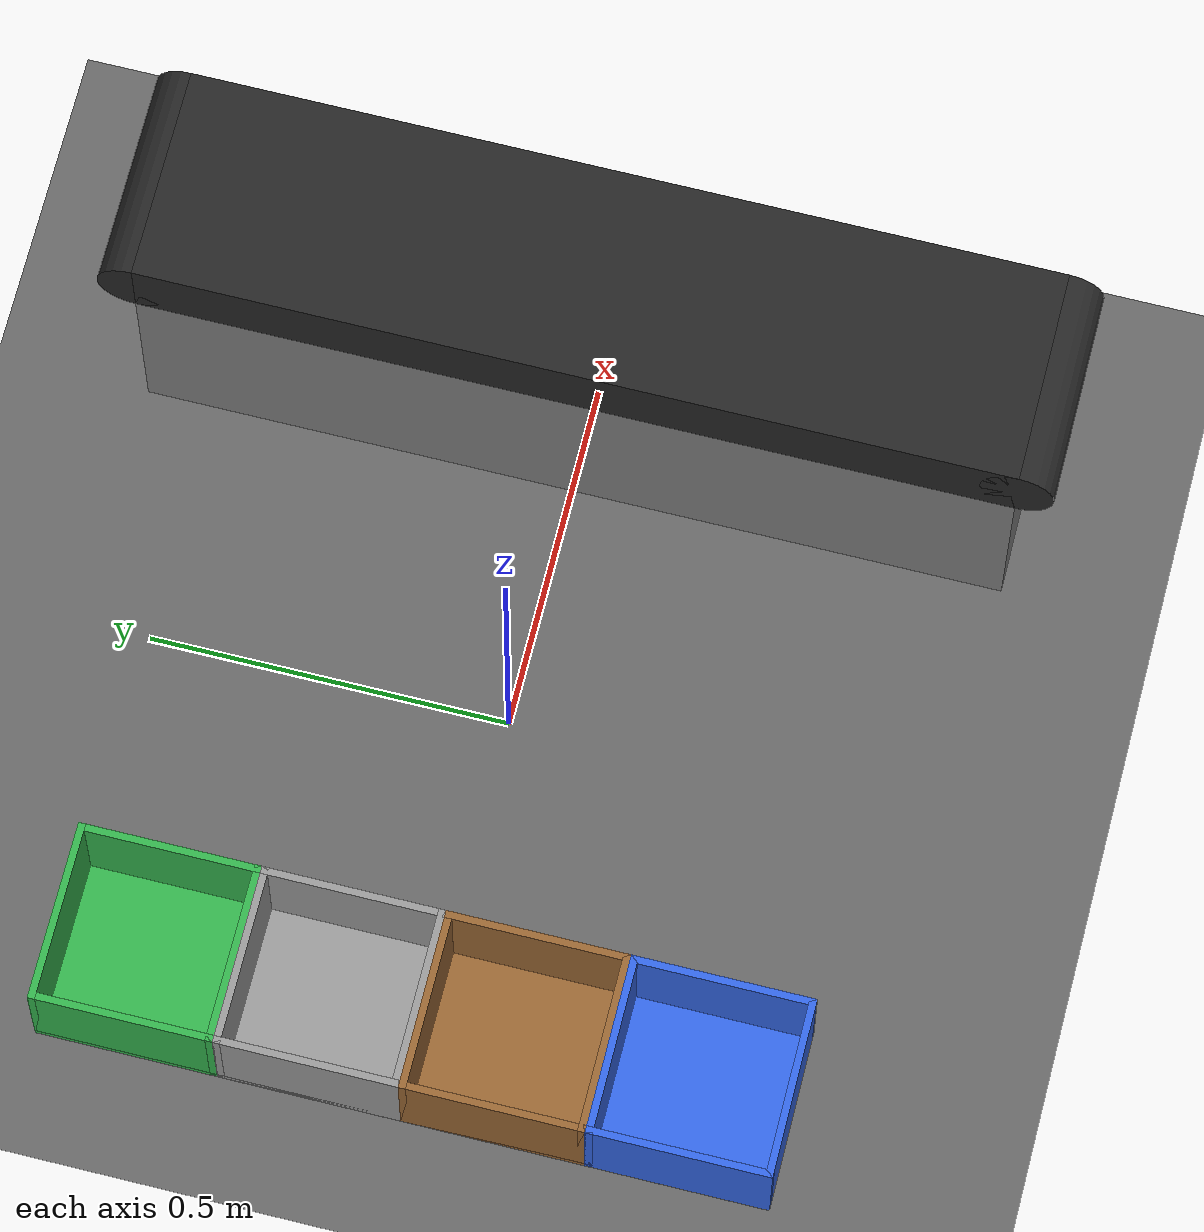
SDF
<?xml version="1.0" ?>
<sdf version="1.8">
  <world name="sorting">

    <!--The same Gazebo systems as the A3/A4 maze. Sensors uses ogre2,
    which the camera will need later.-->
    <plugin filename="gz-sim-physics-system"           name="gz::sim::systems::Physics"/>
    <plugin filename="gz-sim-user-commands-system"     name="gz::sim::systems::UserCommands"/>
    <plugin filename="gz-sim-scene-broadcaster-system" name="gz::sim::systems::SceneBroadcaster"/>
    <plugin filename="gz-sim-sensors-system"           name="gz::sim::systems::Sensors">
      <render_engine>ogre2</render_engine>
    </plugin>

    <light type="directional" name="sun">
      <cast_shadows>true</cast_shadows>
      <pose>0 0 10 0 0 0</pose>
      <diffuse>0.8 0.8 0.8 1</diffuse>
      <specular>0.2 0.2 0.2 1</specular>
      <direction>-0.5 0.1 -0.9</direction>
    </light>

    <model name="ground_plane">
      <static>true</static>
      <link name="link">
        <collision name="collision">
          <geometry><plane><normal>0 0 1</normal><size>100 100</size></plane></geometry>
        </collision>
        <visual name="visual">
          <geometry><plane><normal>0 0 1</normal><size>100 100</size></plane></geometry>
          <material><diffuse>0.4 0.4 0.4 1</diffuse></material>
        </visual>
      </link>
    </model>

    <!--What the belt stands on. Only there so the belt isn't floating.
    Its top is at z = 0.3.-->
    <model name="belt_stand">
      <static>true</static>
      <pose>0.5 0 0.15 0 0 0</pose>
      <link name="link">
        <collision name="collision">
          <geometry><box><size>0.3 1.2 0.3</size></box></geometry>
        </collision>
        <visual name="visual">
          <geometry><box><size>0.3 1.2 0.3</size></box></geometry>
          <material><diffuse>0.5 0.5 0.5 1</diffuse></material>
        </visual>
      </link>
    </model>

    <model name="conveyor">
      <static>true</static>
      <!--Turned 90 degrees (yaw = pi/2), because the belt moves along its
      own x and we want it to run along the world's y.-->
      <pose>0.5 0 0.35 0 0 1.570796327</pose>
      <link name="base_link">

        <!--The belt surface. The friction settings are from Gazebo's
        example. They make objects grip the belt and ride along.-->
        <collision name="belt_collision">
          <geometry><box><size>1.2 0.3 0.1</size></box></geometry>
          <surface>
            <friction>
              <ode><mu>0.7</mu><mu2>150</mu2><fdir1>0 1 0</fdir1></ode>
            </friction>
          </surface>
        </collision>
        <visual name="belt_visual">
          <geometry><box><size>1.2 0.3 0.1</size></box></geometry>
          <material><diffuse>0.15 0.15 0.15 1</diffuse></material>
        </visual>

        <!--A roller at each end, so the ends are round like a real belt.-->
        <collision name="roller_front_collision">
          <pose>0.6 0 0 -1.570796327 0 0</pose>
          <geometry><cylinder><length>0.3</length><radius>0.05</radius></cylinder></geometry>
          <surface>
            <friction>
              <ode><mu>0.7</mu><mu2>150</mu2><fdir1>0 1 0</fdir1></ode>
            </friction>
          </surface>
        </collision>
        <visual name="roller_front_visual">
          <pose>0.6 0 0 -1.570796327 0 0</pose>
          <geometry><cylinder><length>0.3</length><radius>0.05</radius></cylinder></geometry>
          <material><diffuse>0.15 0.15 0.15 1</diffuse></material>
        </visual>

        <collision name="roller_back_collision">
          <pose>-0.6 0 0 -1.570796327 0 0</pose>
          <geometry><cylinder><length>0.3</length><radius>0.05</radius></cylinder></geometry>
          <surface>
            <friction>
              <ode><mu>0.7</mu><mu2>150</mu2><fdir1>0 1 0</fdir1></ode>
            </friction>
          </surface>
        </collision>
        <visual name="roller_back_visual">
          <pose>-0.6 0 0 -1.570796327 0 0</pose>
          <geometry><cylinder><length>0.3</length><radius>0.05</radius></cylinder></geometry>
          <material><diffuse>0.15 0.15 0.15 1</diffuse></material>
        </visual>
      </link>

      <!--Gazebo's built-in system that moves the belt surface. It listens
      for a speed on .../base_link/track_cmd_vel.-->
      <plugin filename="gz-sim-track-controller-system"
              name="gz::sim::systems::TrackController">
        <link>base_link</link>
        <odometry_publish_frequency>1</odometry_publish_frequency>
      </plugin>
    </model>

    <!--The four bins. Each is an open box, 25 x 25 cm and 15 cm high:
    a bottom and four walls. The walls' poses are measured from the bin's
    centre, so moving a bin only means changing its own pose.-->

    <!--Plastic bin, blue.-->
    <model name="bin_plastic">
      <static>true</static>
      <pose>-0.45 -0.375 0 0 0 0</pose>
      <link name="link">
        <collision name="bottom_collision">
          <pose>0 0 0.005 0 0 0</pose>
          <geometry><box><size>0.25 0.25 0.01</size></box></geometry>
        </collision>
        <visual name="bottom_visual">
          <pose>0 0 0.005 0 0 0</pose>
          <geometry><box><size>0.25 0.25 0.01</size></box></geometry>
          <material><diffuse>0.2 0.4 0.9 1</diffuse></material>
        </visual>

        <collision name="wall_front_collision">
          <pose>0.12 0 0.075 0 0 0</pose>
          <geometry><box><size>0.01 0.25 0.15</size></box></geometry>
        </collision>
        <visual name="wall_front_visual">
          <pose>0.12 0 0.075 0 0 0</pose>
          <geometry><box><size>0.01 0.25 0.15</size></box></geometry>
          <material><diffuse>0.2 0.4 0.9 1</diffuse></material>
        </visual>

        <collision name="wall_back_collision">
          <pose>-0.12 0 0.075 0 0 0</pose>
          <geometry><box><size>0.01 0.25 0.15</size></box></geometry>
        </collision>
        <visual name="wall_back_visual">
          <pose>-0.12 0 0.075 0 0 0</pose>
          <geometry><box><size>0.01 0.25 0.15</size></box></geometry>
          <material><diffuse>0.2 0.4 0.9 1</diffuse></material>
        </visual>

        <collision name="wall_left_collision">
          <pose>0 0.12 0.075 0 0 0</pose>
          <geometry><box><size>0.25 0.01 0.15</size></box></geometry>
        </collision>
        <visual name="wall_left_visual">
          <pose>0 0.12 0.075 0 0 0</pose>
          <geometry><box><size>0.25 0.01 0.15</size></box></geometry>
          <material><diffuse>0.2 0.4 0.9 1</diffuse></material>
        </visual>

        <collision name="wall_right_collision">
          <pose>0 -0.12 0.075 0 0 0</pose>
          <geometry><box><size>0.25 0.01 0.15</size></box></geometry>
        </collision>
        <visual name="wall_right_visual">
          <pose>0 -0.12 0.075 0 0 0</pose>
          <geometry><box><size>0.25 0.01 0.15</size></box></geometry>
          <material><diffuse>0.2 0.4 0.9 1</diffuse></material>
        </visual>
      </link>
    </model>

    <!--Paper bin, brown.-->
    <model name="bin_paper">
      <static>true</static>
      <pose>-0.45 -0.125 0 0 0 0</pose>
      <link name="link">
        <collision name="bottom_collision">
          <pose>0 0 0.005 0 0 0</pose>
          <geometry><box><size>0.25 0.25 0.01</size></box></geometry>
        </collision>
        <visual name="bottom_visual">
          <pose>0 0 0.005 0 0 0</pose>
          <geometry><box><size>0.25 0.25 0.01</size></box></geometry>
          <material><diffuse>0.6 0.4 0.2 1</diffuse></material>
        </visual>

        <collision name="wall_front_collision">
          <pose>0.12 0 0.075 0 0 0</pose>
          <geometry><box><size>0.01 0.25 0.15</size></box></geometry>
        </collision>
        <visual name="wall_front_visual">
          <pose>0.12 0 0.075 0 0 0</pose>
          <geometry><box><size>0.01 0.25 0.15</size></box></geometry>
          <material><diffuse>0.6 0.4 0.2 1</diffuse></material>
        </visual>

        <collision name="wall_back_collision">
          <pose>-0.12 0 0.075 0 0 0</pose>
          <geometry><box><size>0.01 0.25 0.15</size></box></geometry>
        </collision>
        <visual name="wall_back_visual">
          <pose>-0.12 0 0.075 0 0 0</pose>
          <geometry><box><size>0.01 0.25 0.15</size></box></geometry>
          <material><diffuse>0.6 0.4 0.2 1</diffuse></material>
        </visual>

        <collision name="wall_left_collision">
          <pose>0 0.12 0.075 0 0 0</pose>
          <geometry><box><size>0.25 0.01 0.15</size></box></geometry>
        </collision>
        <visual name="wall_left_visual">
          <pose>0 0.12 0.075 0 0 0</pose>
          <geometry><box><size>0.25 0.01 0.15</size></box></geometry>
          <material><diffuse>0.6 0.4 0.2 1</diffuse></material>
        </visual>

        <collision name="wall_right_collision">
          <pose>0 -0.12 0.075 0 0 0</pose>
          <geometry><box><size>0.25 0.01 0.15</size></box></geometry>
        </collision>
        <visual name="wall_right_visual">
          <pose>0 -0.12 0.075 0 0 0</pose>
          <geometry><box><size>0.25 0.01 0.15</size></box></geometry>
          <material><diffuse>0.6 0.4 0.2 1</diffuse></material>
        </visual>
      </link>
    </model>

    <!--Metal bin, grey.-->
    <model name="bin_metal">
      <static>true</static>
      <pose>-0.45 0.125 0 0 0 0</pose>
      <link name="link">
        <collision name="bottom_collision">
          <pose>0 0 0.005 0 0 0</pose>
          <geometry><box><size>0.25 0.25 0.01</size></box></geometry>
        </collision>
        <visual name="bottom_visual">
          <pose>0 0 0.005 0 0 0</pose>
          <geometry><box><size>0.25 0.25 0.01</size></box></geometry>
          <material><diffuse>0.6 0.6 0.6 1</diffuse></material>
        </visual>

        <collision name="wall_front_collision">
          <pose>0.12 0 0.075 0 0 0</pose>
          <geometry><box><size>0.01 0.25 0.15</size></box></geometry>
        </collision>
        <visual name="wall_front_visual">
          <pose>0.12 0 0.075 0 0 0</pose>
          <geometry><box><size>0.01 0.25 0.15</size></box></geometry>
          <material><diffuse>0.6 0.6 0.6 1</diffuse></material>
        </visual>

        <collision name="wall_back_collision">
          <pose>-0.12 0 0.075 0 0 0</pose>
          <geometry><box><size>0.01 0.25 0.15</size></box></geometry>
        </collision>
        <visual name="wall_back_visual">
          <pose>-0.12 0 0.075 0 0 0</pose>
          <geometry><box><size>0.01 0.25 0.15</size></box></geometry>
          <material><diffuse>0.6 0.6 0.6 1</diffuse></material>
        </visual>

        <collision name="wall_left_collision">
          <pose>0 0.12 0.075 0 0 0</pose>
          <geometry><box><size>0.25 0.01 0.15</size></box></geometry>
        </collision>
        <visual name="wall_left_visual">
          <pose>0 0.12 0.075 0 0 0</pose>
          <geometry><box><size>0.25 0.01 0.15</size></box></geometry>
          <material><diffuse>0.6 0.6 0.6 1</diffuse></material>
        </visual>

        <collision name="wall_right_collision">
          <pose>0 -0.12 0.075 0 0 0</pose>
          <geometry><box><size>0.25 0.01 0.15</size></box></geometry>
        </collision>
        <visual name="wall_right_visual">
          <pose>0 -0.12 0.075 0 0 0</pose>
          <geometry><box><size>0.25 0.01 0.15</size></box></geometry>
          <material><diffuse>0.6 0.6 0.6 1</diffuse></material>
        </visual>
      </link>
    </model>

    <!--Glass bin, green.-->
    <model name="bin_glass">
      <static>true</static>
      <pose>-0.45 0.375 0 0 0 0</pose>
      <link name="link">
        <collision name="bottom_collision">
          <pose>0 0 0.005 0 0 0</pose>
          <geometry><box><size>0.25 0.25 0.01</size></box></geometry>
        </collision>
        <visual name="bottom_visual">
          <pose>0 0 0.005 0 0 0</pose>
          <geometry><box><size>0.25 0.25 0.01</size></box></geometry>
          <material><diffuse>0.2 0.7 0.3 1</diffuse></material>
        </visual>

        <collision name="wall_front_collision">
          <pose>0.12 0 0.075 0 0 0</pose>
          <geometry><box><size>0.01 0.25 0.15</size></box></geometry>
        </collision>
        <visual name="wall_front_visual">
          <pose>0.12 0 0.075 0 0 0</pose>
          <geometry><box><size>0.01 0.25 0.15</size></box></geometry>
          <material><diffuse>0.2 0.7 0.3 1</diffuse></material>
        </visual>

        <collision name="wall_back_collision">
          <pose>-0.12 0 0.075 0 0 0</pose>
          <geometry><box><size>0.01 0.25 0.15</size></box></geometry>
        </collision>
        <visual name="wall_back_visual">
          <pose>-0.12 0 0.075 0 0 0</pose>
          <geometry><box><size>0.01 0.25 0.15</size></box></geometry>
          <material><diffuse>0.2 0.7 0.3 1</diffuse></material>
        </visual>

        <collision name="wall_left_collision">
          <pose>0 0.12 0.075 0 0 0</pose>
          <geometry><box><size>0.25 0.01 0.15</size></box></geometry>
        </collision>
        <visual name="wall_left_visual">
          <pose>0 0.12 0.075 0 0 0</pose>
          <geometry><box><size>0.25 0.01 0.15</size></box></geometry>
          <material><diffuse>0.2 0.7 0.3 1</diffuse></material>
        </visual>

        <collision name="wall_right_collision">
          <pose>0 -0.12 0.075 0 0 0</pose>
          <geometry><box><size>0.25 0.01 0.15</size></box></geometry>
        </collision>
        <visual name="wall_right_visual">
          <pose>0 -0.12 0.075 0 0 0</pose>
          <geometry><box><size>0.25 0.01 0.15</size></box></geometry>
          <material><diffuse>0.2 0.7 0.3 1</diffuse></material>
        </visual>
      </link>
    </model>

  </world>
</sdf>
